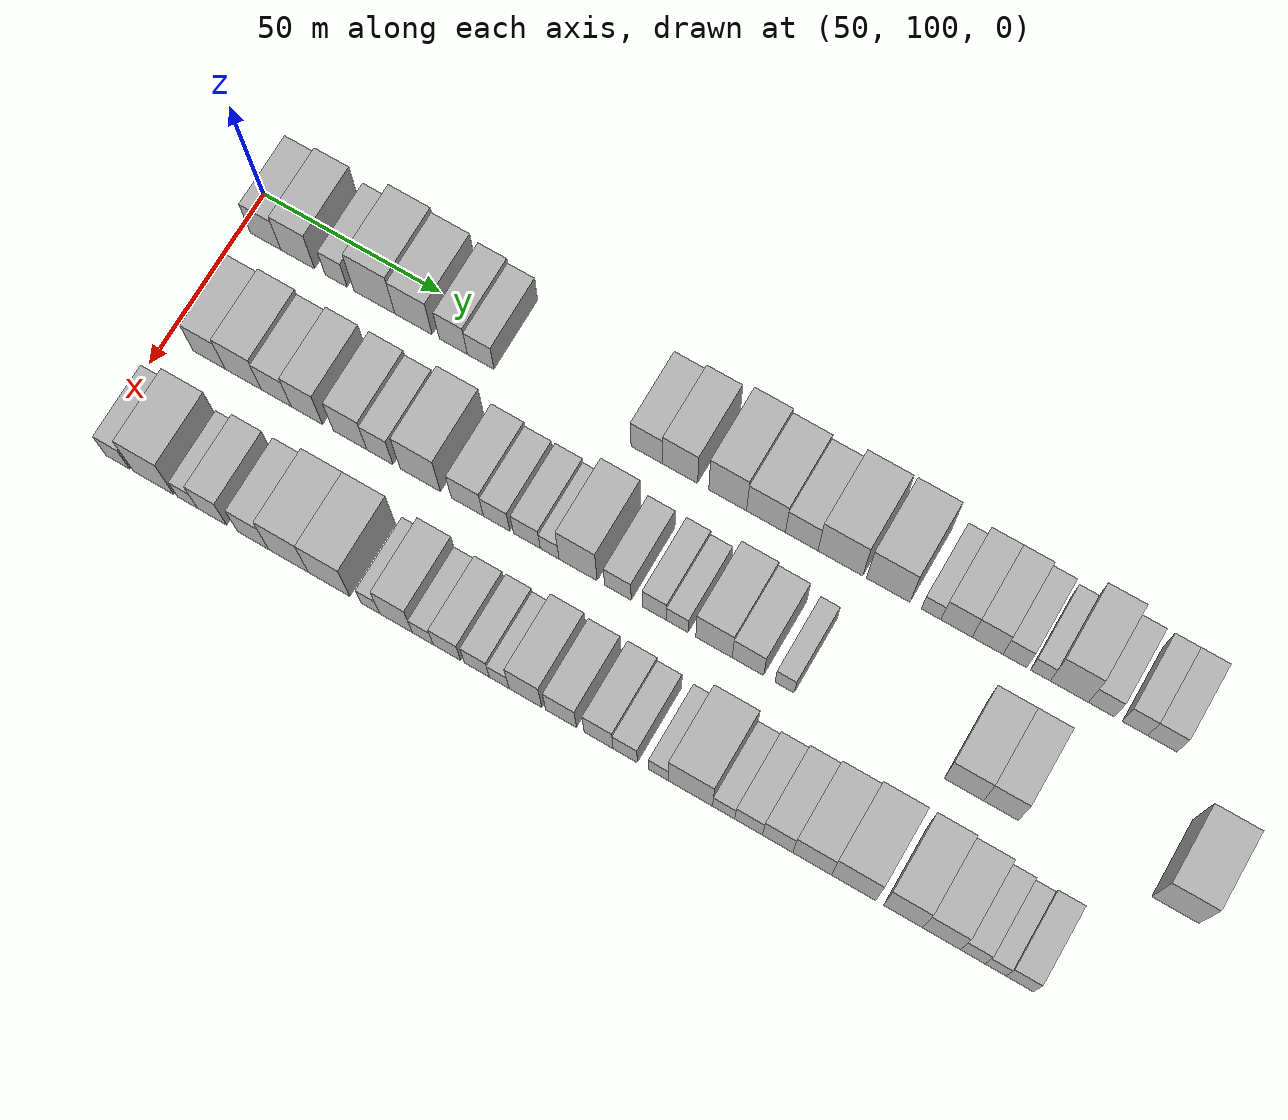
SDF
<sdf version="1.6">
 <world name="default">
  <model name="building_42">
   <static>1</static>
   <pose>50.0000 107.0255 0 0.000000 0.000000 0.000000</pose>
   <link name="link">
    <pose>0 0 9.00 0 0 0</pose>
    <collision name="collision"><geometry><box><size>20.0000 8.6352 18.0000</size></box></geometry></collision>
    <visual name="visual">
     <cast_shadows>0</cast_shadows>
     <geometry><box><size>20.0000 8.6352 18.0000</size></box></geometry>
     <material>
      <script>
       <uri>model://HANNAS_wall/materials/scripts</uri>
       <uri>model://HANNAS_wall/materials/textures</uri>
       <name>vrc/HANNAS_wall</name>
      </script>
     </material>
    </visual>
   </link>
  </model>
  <model name="building_43">
   <static>1</static>
   <pose>50.0000 116.1089 0 0.000000 0.000000 0.000000</pose>
   <link name="link">
    <pose>0 0 10.50 0 0 0</pose>
    <collision name="collision"><geometry><box><size>20.0000 9.5316 21.0000</size></box></geometry></collision>
    <visual name="visual">
     <cast_shadows>0</cast_shadows>
     <geometry><box><size>20.0000 9.5316 21.0000</size></box></geometry>
     <material>
      <script>
       <uri>model://HANNAS_wall/materials/scripts</uri>
       <uri>model://HANNAS_wall/materials/textures</uri>
       <name>vrc/HANNAS_wall</name>
      </script>
     </material>
    </visual>
   </link>
  </model>
  <model name="building_44">
   <static>1</static>
   <pose>50.0000 126.9574 0 0.000000 0.000000 0.000000</pose>
   <link name="link">
    <pose>0 0 7.50 0 0 0</pose>
    <collision name="collision"><geometry><box><size>20.0000 6.1653 15.0000</size></box></geometry></collision>
    <visual name="visual">
     <cast_shadows>0</cast_shadows>
     <geometry><box><size>20.0000 6.1653 15.0000</size></box></geometry>
     <material>
      <script>
       <uri>model://HANNAS_wall/materials/scripts</uri>
       <uri>model://HANNAS_wall/materials/textures</uri>
       <name>vrc/HANNAS_wall</name>
      </script>
     </material>
    </visual>
   </link>
  </model>
  <model name="building_45">
   <static>1</static>
   <pose>50.0000 137.7433 0 0.000000 0.000000 0.000000</pose>
   <link name="link">
    <pose>0 0 12.00 0 0 0</pose>
    <collision name="collision"><geometry><box><size>20.0000 11.4064 24.0000</size></box></geometry></collision>
    <visual name="visual">
     <cast_shadows>0</cast_shadows>
     <geometry><box><size>20.0000 11.4064 24.0000</size></box></geometry>
     <material>
      <script>
       <uri>model://HANNAS_wall/materials/scripts</uri>
       <uri>model://HANNAS_wall/materials/textures</uri>
       <name>vrc/HANNAS_wall</name>
      </script>
     </material>
    </visual>
   </link>
  </model>
  <model name="building_46">
   <static>1</static>
   <pose>50.0000 148.6436 0 0.000000 0.000000 0.000000</pose>
   <link name="link">
    <pose>0 0 10.50 0 0 0</pose>
    <collision name="collision"><geometry><box><size>20.0000 10.3942 21.0000</size></box></geometry></collision>
    <visual name="visual">
     <cast_shadows>0</cast_shadows>
     <geometry><box><size>20.0000 10.3942 21.0000</size></box></geometry>
     <material>
      <script>
       <uri>model://HANNAS_wall/materials/scripts</uri>
       <uri>model://HANNAS_wall/materials/textures</uri>
       <name>vrc/HANNAS_wall</name>
      </script>
     </material>
    </visual>
   </link>
  </model>
  <model name="building_47">
   <static>1</static>
   <pose>50.0000 159.7415 0 0.000000 0.000000 0.000000</pose>
   <link name="link">
    <pose>0 0 9.00 0 0 0</pose>
    <collision name="collision"><geometry><box><size>20.0000 7.8018 18.0000</size></box></geometry></collision>
    <visual name="visual">
     <cast_shadows>0</cast_shadows>
     <geometry><box><size>20.0000 7.8018 18.0000</size></box></geometry>
     <material>
      <script>
       <uri>model://HANNAS_wall/materials/scripts</uri>
       <uri>model://HANNAS_wall/materials/textures</uri>
       <name>vrc/HANNAS_wall</name>
      </script>
     </material>
    </visual>
   </link>
  </model>
  <model name="building_48">
   <static>1</static>
   <pose>50.0000 167.3226 0 0.000000 0.000000 0.000000</pose>
   <link name="link">
    <pose>0 0 7.50 0 0 0</pose>
    <collision name="collision"><geometry><box><size>20.0000 7.3603 15.0000</size></box></geometry></collision>
    <visual name="visual">
     <cast_shadows>0</cast_shadows>
     <geometry><box><size>20.0000 7.3603 15.0000</size></box></geometry>
     <material>
      <script>
       <uri>model://HANNAS_wall/materials/scripts</uri>
       <uri>model://HANNAS_wall/materials/textures</uri>
       <name>vrc/HANNAS_wall</name>
      </script>
     </material>
    </visual>
   </link>
  </model>
  <model name="building_49">
   <static>1</static>
   <pose>50.0000 212.8651 0 0.000000 0.000000 0.000000</pose>
   <link name="link">
    <pose>0 0 9.00 0 0 0</pose>
    <collision name="collision"><geometry><box><size>20.0000 8.5749 18.0000</size></box></geometry></collision>
    <visual name="visual">
     <cast_shadows>0</cast_shadows>
     <geometry><box><size>20.0000 8.5749 18.0000</size></box></geometry>
     <material>
      <script>
       <uri>model://HANNAS_wall/materials/scripts</uri>
       <uri>model://HANNAS_wall/materials/textures</uri>
       <name>vrc/HANNAS_wall</name>
      </script>
     </material>
    </visual>
   </link>
  </model>
  <model name="building_50">
   <static>1</static>
   <pose>50.0000 221.8781 0 0.000000 0.000000 0.000000</pose>
   <link name="link">
    <pose>0 0 10.50 0 0 0</pose>
    <collision name="collision"><geometry><box><size>20.0000 9.4511 21.0000</size></box></geometry></collision>
    <visual name="visual">
     <cast_shadows>0</cast_shadows>
     <geometry><box><size>20.0000 9.4511 21.0000</size></box></geometry>
     <material>
      <script>
       <uri>model://HANNAS_wall/materials/scripts</uri>
       <uri>model://HANNAS_wall/materials/textures</uri>
       <name>vrc/HANNAS_wall</name>
      </script>
     </material>
    </visual>
   </link>
  </model>
  <model name="building_51">
   <static>1</static>
   <pose>50.0000 234.6874 0 0.000000 0.000000 0.000000</pose>
   <link name="link">
    <pose>0 0 12.00 0 0 0</pose>
    <collision name="collision"><geometry><box><size>20.0000 10.1676 24.0000</size></box></geometry></collision>
    <visual name="visual">
     <cast_shadows>0</cast_shadows>
     <geometry><box><size>20.0000 10.1676 24.0000</size></box></geometry>
     <material>
      <script>
       <uri>model://HANNAS_wall/materials/scripts</uri>
       <uri>model://HANNAS_wall/materials/textures</uri>
       <name>vrc/HANNAS_wall</name>
      </script>
     </material>
    </visual>
   </link>
  </model>
  <model name="building_52">
   <static>1</static>
   <pose>50.0000 244.9730 0 0.000000 0.000000 0.000000</pose>
   <link name="link">
    <pose>0 0 10.50 0 0 0</pose>
    <collision name="collision"><geometry><box><size>20.0000 10.4035 21.0000</size></box></geometry></collision>
    <visual name="visual">
     <cast_shadows>0</cast_shadows>
     <geometry><box><size>20.0000 10.4035 21.0000</size></box></geometry>
     <material>
      <script>
       <uri>model://HANNAS_wall/materials/scripts</uri>
       <uri>model://HANNAS_wall/materials/textures</uri>
       <name>vrc/HANNAS_wall</name>
      </script>
     </material>
    </visual>
   </link>
  </model>
  <model name="building_53">
   <static>1</static>
   <pose>50.0000 254.5338 0 0.000000 0.000000 0.000000</pose>
   <link name="link">
    <pose>0 0 9.00 0 0 0</pose>
    <collision name="collision"><geometry><box><size>20.0000 8.7182 18.0000</size></box></geometry></collision>
    <visual name="visual">
     <cast_shadows>0</cast_shadows>
     <geometry><box><size>20.0000 8.7182 18.0000</size></box></geometry>
     <material>
      <script>
       <uri>model://HANNAS_wall/materials/scripts</uri>
       <uri>model://HANNAS_wall/materials/textures</uri>
       <name>vrc/HANNAS_wall</name>
      </script>
     </material>
    </visual>
   </link>
  </model>
  <model name="building_54">
   <static>1</static>
   <pose>50.0000 264.8373 0 0.000000 0.000000 0.000000</pose>
   <link name="link">
    <pose>0 0 12.00 0 0 0</pose>
    <collision name="collision"><geometry><box><size>20.0000 11.8889 24.0000</size></box></geometry></collision>
    <visual name="visual">
     <cast_shadows>0</cast_shadows>
     <geometry><box><size>20.0000 11.8889 24.0000</size></box></geometry>
     <material>
      <script>
       <uri>model://HANNAS_wall/materials/scripts</uri>
       <uri>model://HANNAS_wall/materials/textures</uri>
       <name>vrc/HANNAS_wall</name>
      </script>
     </material>
    </visual>
   </link>
  </model>
  <model name="building_55">
   <static>1</static>
   <pose>50.0000 277.5243 0 0.000000 0.000000 0.000000</pose>
   <link name="link">
    <pose>0 0 12.00 0 0 0</pose>
    <collision name="collision"><geometry><box><size>20.0000 11.4850 24.0000</size></box></geometry></collision>
    <visual name="visual">
     <cast_shadows>0</cast_shadows>
     <geometry><box><size>20.0000 11.4850 24.0000</size></box></geometry>
     <material>
      <script>
       <uri>model://HANNAS_wall/materials/scripts</uri>
       <uri>model://HANNAS_wall/materials/textures</uri>
       <name>vrc/HANNAS_wall</name>
      </script>
     </material>
    </visual>
   </link>
  </model>
  <model name="building_56">
   <static>1</static>
   <pose>50.0000 288.8443 0 0.000000 0.000000 0.000000</pose>
   <link name="link">
    <pose>0 0 6.00 0 0 0</pose>
    <collision name="collision"><geometry><box><size>20.0000 5.1550 12.0000</size></box></geometry></collision>
    <visual name="visual">
     <cast_shadows>0</cast_shadows>
     <geometry><box><size>20.0000 5.1550 12.0000</size></box></geometry>
     <material>
      <script>
       <uri>model://HANNAS_wall/materials/scripts</uri>
       <uri>model://HANNAS_wall/materials/textures</uri>
       <name>vrc/HANNAS_wall</name>
      </script>
     </material>
    </visual>
   </link>
  </model>
  <model name="building_57">
   <static>1</static>
   <pose>50.0000 295.5241 0 0.000000 0.000000 0.000000</pose>
   <link name="link">
    <pose>0 0 9.00 0 0 0</pose>
    <collision name="collision"><geometry><box><size>20.0000 8.2046 18.0000</size></box></geometry></collision>
    <visual name="visual">
     <cast_shadows>0</cast_shadows>
     <geometry><box><size>20.0000 8.2046 18.0000</size></box></geometry>
     <material>
      <script>
       <uri>model://HANNAS_wall/materials/scripts</uri>
       <uri>model://HANNAS_wall/materials/textures</uri>
       <name>vrc/HANNAS_wall</name>
      </script>
     </material>
    </visual>
   </link>
  </model>
  <model name="building_58">
   <static>1</static>
   <pose>50.0000 303.6294 0 0.000000 0.000000 0.000000</pose>
   <link name="link">
    <pose>0 0 9.00 0 0 0</pose>
    <collision name="collision"><geometry><box><size>20.0000 8.0060 18.0000</size></box></geometry></collision>
    <visual name="visual">
     <cast_shadows>0</cast_shadows>
     <geometry><box><size>20.0000 8.0060 18.0000</size></box></geometry>
     <material>
      <script>
       <uri>model://HANNAS_wall/materials/scripts</uri>
       <uri>model://HANNAS_wall/materials/textures</uri>
       <name>vrc/HANNAS_wall</name>
      </script>
     </material>
    </visual>
   </link>
  </model>
  <model name="building_59">
   <static>1</static>
   <pose>50.0000 310.7290 0 0.000000 0.000000 0.000000</pose>
   <link name="link">
    <pose>0 0 7.50 0 0 0</pose>
    <collision name="collision"><geometry><box><size>20.0000 6.1931 15.0000</size></box></geometry></collision>
    <visual name="visual">
     <cast_shadows>0</cast_shadows>
     <geometry><box><size>20.0000 6.1931 15.0000</size></box></geometry>
     <material>
      <script>
       <uri>model://HANNAS_wall/materials/scripts</uri>
       <uri>model://HANNAS_wall/materials/textures</uri>
       <name>vrc/HANNAS_wall</name>
      </script>
     </material>
    </visual>
   </link>
  </model>
  <model name="building_60">
   <static>1</static>
   <pose>50.0000 317.3762 0 0.000000 0.000000 0.000000</pose>
   <link name="link">
    <pose>0 0 6.00 0 0 0</pose>
    <collision name="collision"><geometry><box><size>20.0000 5.1014 12.0000</size></box></geometry></collision>
    <visual name="visual">
     <cast_shadows>0</cast_shadows>
     <geometry><box><size>20.0000 5.1014 12.0000</size></box></geometry>
     <material>
      <script>
       <uri>model://HANNAS_wall/materials/scripts</uri>
       <uri>model://HANNAS_wall/materials/textures</uri>
       <name>vrc/HANNAS_wall</name>
      </script>
     </material>
    </visual>
   </link>
  </model>
  <model name="building_61">
   <static>1</static>
   <pose>50.0000 324.8733 0 0.000000 0.000000 0.000000</pose>
   <link name="link">
    <pose>0 0 12.00 0 0 0</pose>
    <collision name="collision"><geometry><box><size>20.0000 9.8928 24.0000</size></box></geometry></collision>
    <visual name="visual">
     <cast_shadows>0</cast_shadows>
     <geometry><box><size>20.0000 9.8928 24.0000</size></box></geometry>
     <material>
      <script>
       <uri>model://HANNAS_wall/materials/scripts</uri>
       <uri>model://HANNAS_wall/materials/textures</uri>
       <name>vrc/HANNAS_wall</name>
      </script>
     </material>
    </visual>
   </link>
  </model>
  <model name="building_62">
   <static>1</static>
   <pose>50.0000 333.1877 0 0.000000 0.000000 0.000000</pose>
   <link name="link">
    <pose>0 0 7.50 0 0 0</pose>
    <collision name="collision"><geometry><box><size>20.0000 6.7360 15.0000</size></box></geometry></collision>
    <visual name="visual">
     <cast_shadows>0</cast_shadows>
     <geometry><box><size>20.0000 6.7360 15.0000</size></box></geometry>
     <material>
      <script>
       <uri>model://HANNAS_wall/materials/scripts</uri>
       <uri>model://HANNAS_wall/materials/textures</uri>
       <name>vrc/HANNAS_wall</name>
      </script>
     </material>
    </visual>
   </link>
  </model>
  <model name="building_63">
   <static>1</static>
   <pose>50.0000 341.8374 0 0.000000 0.000000 0.000000</pose>
   <link name="link">
    <pose>0 0 7.50 0 0 0</pose>
    <collision name="collision"><geometry><box><size>20.0000 6.5636 15.0000</size></box></geometry></collision>
    <visual name="visual">
     <cast_shadows>0</cast_shadows>
     <geometry><box><size>20.0000 6.5636 15.0000</size></box></geometry>
     <material>
      <script>
       <uri>model://HANNAS_wall/materials/scripts</uri>
       <uri>model://HANNAS_wall/materials/textures</uri>
       <name>vrc/HANNAS_wall</name>
      </script>
     </material>
    </visual>
   </link>
  </model>
  <model name="building_64">
   <static>1</static>
   <pose>50.0000 348.8670 0 0.000000 0.000000 0.000000</pose>
   <link name="link">
    <pose>0 0 7.50 0 0 0</pose>
    <collision name="collision"><geometry><box><size>20.0000 7.4956 15.0000</size></box></geometry></collision>
    <visual name="visual">
     <cast_shadows>0</cast_shadows>
     <geometry><box><size>20.0000 7.4956 15.0000</size></box></geometry>
     <material>
      <script>
       <uri>model://HANNAS_wall/materials/scripts</uri>
       <uri>model://HANNAS_wall/materials/textures</uri>
       <name>vrc/HANNAS_wall</name>
      </script>
     </material>
    </visual>
   </link>
  </model>
  <model name="building_118">
   <static>1</static>
   <pose>82.0000 111.6366 0 0.000000 0.000000 0.000000</pose>
   <link name="link">
    <pose>0 0 9.00 0 0 0</pose>
    <collision name="collision"><geometry><box><size>20.0000 8.9910 18.0000</size></box></geometry></collision>
    <visual name="visual">
     <cast_shadows>0</cast_shadows>
     <geometry><box><size>20.0000 8.9910 18.0000</size></box></geometry>
     <material>
      <script>
       <uri>model://HANNAS_wall/materials/scripts</uri>
       <uri>model://HANNAS_wall/materials/textures</uri>
       <name>vrc/HANNAS_wall</name>
      </script>
     </material>
    </visual>
   </link>
  </model>
  <model name="building_119">
   <static>1</static>
   <pose>82.0000 121.1888 0 0.000000 0.000000 0.000000</pose>
   <link name="link">
    <pose>0 0 10.50 0 0 0</pose>
    <collision name="collision"><geometry><box><size>20.0000 10.1135 21.0000</size></box></geometry></collision>
    <visual name="visual">
     <cast_shadows>0</cast_shadows>
     <geometry><box><size>20.0000 10.1135 21.0000</size></box></geometry>
     <material>
      <script>
       <uri>model://HANNAS_wall/materials/scripts</uri>
       <uri>model://HANNAS_wall/materials/textures</uri>
       <name>vrc/HANNAS_wall</name>
      </script>
     </material>
    </visual>
   </link>
  </model>
  <model name="building_120">
   <static>1</static>
   <pose>82.0000 130.4303 0 0.000000 0.000000 0.000000</pose>
   <link name="link">
    <pose>0 0 9.00 0 0 0</pose>
    <collision name="collision"><geometry><box><size>20.0000 8.3694 18.0000</size></box></geometry></collision>
    <visual name="visual">
     <cast_shadows>0</cast_shadows>
     <geometry><box><size>20.0000 8.3694 18.0000</size></box></geometry>
     <material>
      <script>
       <uri>model://HANNAS_wall/materials/scripts</uri>
       <uri>model://HANNAS_wall/materials/textures</uri>
       <name>vrc/HANNAS_wall</name>
      </script>
     </material>
    </visual>
   </link>
  </model>
  <model name="building_121">
   <static>1</static>
   <pose>82.0000 138.9737 0 0.000000 0.000000 0.000000</pose>
   <link name="link">
    <pose>0 0 10.50 0 0 0</pose>
    <collision name="collision"><geometry><box><size>20.0000 8.7174 21.0000</size></box></geometry></collision>
    <visual name="visual">
     <cast_shadows>0</cast_shadows>
     <geometry><box><size>20.0000 8.7174 21.0000</size></box></geometry>
     <material>
      <script>
       <uri>model://HANNAS_wall/materials/scripts</uri>
       <uri>model://HANNAS_wall/materials/textures</uri>
       <name>vrc/HANNAS_wall</name>
      </script>
     </material>
    </visual>
   </link>
  </model>
  <model name="building_122">
   <static>1</static>
   <pose>82.0000 150.9577 0 0.000000 0.000000 0.000000</pose>
   <link name="link">
    <pose>0 0 10.50 0 0 0</pose>
    <collision name="collision"><geometry><box><size>20.0000 9.2506 21.0000</size></box></geometry></collision>
    <visual name="visual">
     <cast_shadows>0</cast_shadows>
     <geometry><box><size>20.0000 9.2506 21.0000</size></box></geometry>
     <material>
      <script>
       <uri>model://HANNAS_wall/materials/scripts</uri>
       <uri>model://HANNAS_wall/materials/textures</uri>
       <name>vrc/HANNAS_wall</name>
      </script>
     </material>
    </visual>
   </link>
  </model>
  <model name="building_123">
   <static>1</static>
   <pose>82.0000 159.1846 0 0.000000 0.000000 0.000000</pose>
   <link name="link">
    <pose>0 0 9.00 0 0 0</pose>
    <collision name="collision"><geometry><box><size>20.0000 7.2032 18.0000</size></box></geometry></collision>
    <visual name="visual">
     <cast_shadows>0</cast_shadows>
     <geometry><box><size>20.0000 7.2032 18.0000</size></box></geometry>
     <material>
      <script>
       <uri>model://HANNAS_wall/materials/scripts</uri>
       <uri>model://HANNAS_wall/materials/textures</uri>
       <name>vrc/HANNAS_wall</name>
      </script>
     </material>
    </visual>
   </link>
  </model>
  <model name="building_124">
   <static>1</static>
   <pose>82.0000 170.3092 0 0.000000 0.000000 0.000000</pose>
   <link name="link">
    <pose>0 0 12.00 0 0 0</pose>
    <collision name="collision"><geometry><box><size>20.0000 11.0459 24.0000</size></box></geometry></collision>
    <visual name="visual">
     <cast_shadows>0</cast_shadows>
     <geometry><box><size>20.0000 11.0459 24.0000</size></box></geometry>
     <material>
      <script>
       <uri>model://HANNAS_wall/materials/scripts</uri>
       <uri>model://HANNAS_wall/materials/textures</uri>
       <name>vrc/HANNAS_wall</name>
      </script>
     </material>
    </visual>
   </link>
  </model>
  <model name="building_125">
   <static>1</static>
   <pose>82.0000 183.1890 0 0.000000 0.000000 0.000000</pose>
   <link name="link">
    <pose>0 0 9.00 0 0 0</pose>
    <collision name="collision"><geometry><box><size>20.0000 8.7137 18.0000</size></box></geometry></collision>
    <visual name="visual">
     <cast_shadows>0</cast_shadows>
     <geometry><box><size>20.0000 8.7137 18.0000</size></box></geometry>
     <material>
      <script>
       <uri>model://HANNAS_wall/materials/scripts</uri>
       <uri>model://HANNAS_wall/materials/textures</uri>
       <name>vrc/HANNAS_wall</name>
      </script>
     </material>
    </visual>
   </link>
  </model>
  <model name="building_126">
   <static>1</static>
   <pose>82.0000 191.1359 0 0.000000 0.000000 0.000000</pose>
   <link name="link">
    <pose>0 0 7.50 0 0 0</pose>
    <collision name="collision"><geometry><box><size>20.0000 7.1801 15.0000</size></box></geometry></collision>
    <visual name="visual">
     <cast_shadows>0</cast_shadows>
     <geometry><box><size>20.0000 7.1801 15.0000</size></box></geometry>
     <material>
      <script>
       <uri>model://HANNAS_wall/materials/scripts</uri>
       <uri>model://HANNAS_wall/materials/textures</uri>
       <name>vrc/HANNAS_wall</name>
      </script>
     </material>
    </visual>
   </link>
  </model>
  <model name="building_127">
   <static>1</static>
   <pose>82.0000 199.3512 0 0.000000 0.000000 0.000000</pose>
   <link name="link">
    <pose>0 0 7.50 0 0 0</pose>
    <collision name="collision"><geometry><box><size>20.0000 7.2505 15.0000</size></box></geometry></collision>
    <visual name="visual">
     <cast_shadows>0</cast_shadows>
     <geometry><box><size>20.0000 7.2505 15.0000</size></box></geometry>
     <material>
      <script>
       <uri>model://HANNAS_wall/materials/scripts</uri>
       <uri>model://HANNAS_wall/materials/textures</uri>
       <name>vrc/HANNAS_wall</name>
      </script>
     </material>
    </visual>
   </link>
  </model>
  <model name="building_128">
   <static>1</static>
   <pose>82.0000 205.5141 0 0.000000 0.000000 0.000000</pose>
   <link name="link">
    <pose>0 0 6.00 0 0 0</pose>
    <collision name="collision"><geometry><box><size>20.0000 5.0754 12.0000</size></box></geometry></collision>
    <visual name="visual">
     <cast_shadows>0</cast_shadows>
     <geometry><box><size>20.0000 5.0754 12.0000</size></box></geometry>
     <material>
      <script>
       <uri>model://HANNAS_wall/materials/scripts</uri>
       <uri>model://HANNAS_wall/materials/textures</uri>
       <name>vrc/HANNAS_wall</name>
      </script>
     </material>
    </visual>
   </link>
  </model>
  <model name="building_129">
   <static>1</static>
   <pose>82.0000 213.1860 0 0.000000 0.000000 0.000000</pose>
   <link name="link">
    <pose>0 0 12.00 0 0 0</pose>
    <collision name="collision"><geometry><box><size>20.0000 10.2684 24.0000</size></box></geometry></collision>
    <visual name="visual">
     <cast_shadows>0</cast_shadows>
     <geometry><box><size>20.0000 10.2684 24.0000</size></box></geometry>
     <material>
      <script>
       <uri>model://HANNAS_wall/materials/scripts</uri>
       <uri>model://HANNAS_wall/materials/textures</uri>
       <name>vrc/HANNAS_wall</name>
      </script>
     </material>
    </visual>
   </link>
  </model>
  <model name="building_130">
   <static>1</static>
   <pose>82.0000 223.8929 0 0.000000 0.000000 0.000000</pose>
   <link name="link">
    <pose>0 0 7.50 0 0 0</pose>
    <collision name="collision"><geometry><box><size>20.0000 7.1454 15.0000</size></box></geometry></collision>
    <visual name="visual">
     <cast_shadows>0</cast_shadows>
     <geometry><box><size>20.0000 7.1454 15.0000</size></box></geometry>
     <material>
      <script>
       <uri>model://HANNAS_wall/materials/scripts</uri>
       <uri>model://HANNAS_wall/materials/textures</uri>
       <name>vrc/HANNAS_wall</name>
      </script>
     </material>
    </visual>
   </link>
  </model>
  <model name="building_131">
   <static>1</static>
   <pose>82.0000 233.6661 0 0.000000 0.000000 0.000000</pose>
   <link name="link">
    <pose>0 0 7.50 0 0 0</pose>
    <collision name="collision"><geometry><box><size>20.0000 6.4011 15.0000</size></box></geometry></collision>
    <visual name="visual">
     <cast_shadows>0</cast_shadows>
     <geometry><box><size>20.0000 6.4011 15.0000</size></box></geometry>
     <material>
      <script>
       <uri>model://HANNAS_wall/materials/scripts</uri>
       <uri>model://HANNAS_wall/materials/textures</uri>
       <name>vrc/HANNAS_wall</name>
      </script>
     </material>
    </visual>
   </link>
  </model>
  <model name="building_132">
   <static>1</static>
   <pose>82.0000 239.7598 0 0.000000 0.000000 0.000000</pose>
   <link name="link">
    <pose>0 0 6.00 0 0 0</pose>
    <collision name="collision"><geometry><box><size>20.0000 5.7862 12.0000</size></box></geometry></collision>
    <visual name="visual">
     <cast_shadows>0</cast_shadows>
     <geometry><box><size>20.0000 5.7862 12.0000</size></box></geometry>
     <material>
      <script>
       <uri>model://HANNAS_wall/materials/scripts</uri>
       <uri>model://HANNAS_wall/materials/textures</uri>
       <name>vrc/HANNAS_wall</name>
      </script>
     </material>
    </visual>
   </link>
  </model>
  <model name="building_133">
   <static>1</static>
   <pose>82.0000 249.4871 0 0.000000 0.000000 0.000000</pose>
   <link name="link">
    <pose>0 0 10.50 0 0 0</pose>
    <collision name="collision"><geometry><box><size>20.0000 9.6686 21.0000</size></box></geometry></collision>
    <visual name="visual">
     <cast_shadows>0</cast_shadows>
     <geometry><box><size>20.0000 9.6686 21.0000</size></box></geometry>
     <material>
      <script>
       <uri>model://HANNAS_wall/materials/scripts</uri>
       <uri>model://HANNAS_wall/materials/textures</uri>
       <name>vrc/HANNAS_wall</name>
      </script>
     </material>
    </visual>
   </link>
  </model>
  <model name="building_134">
   <static>1</static>
   <pose>82.0000 258.4680 0 0.000000 0.000000 0.000000</pose>
   <link name="link">
    <pose>0 0 9.00 0 0 0</pose>
    <collision name="collision"><geometry><box><size>20.0000 8.2932 18.0000</size></box></geometry></collision>
    <visual name="visual">
     <cast_shadows>0</cast_shadows>
     <geometry><box><size>20.0000 8.2932 18.0000</size></box></geometry>
     <material>
      <script>
       <uri>model://HANNAS_wall/materials/scripts</uri>
       <uri>model://HANNAS_wall/materials/textures</uri>
       <name>vrc/HANNAS_wall</name>
      </script>
     </material>
    </visual>
   </link>
  </model>
  <model name="building_135">
   <static>1</static>
   <pose>82.0000 268.1443 0 0.000000 0.000000 0.000000</pose>
   <link name="link">
    <pose>0 0 6.00 0 0 0</pose>
    <collision name="collision"><geometry><box><size>20.0000 5.0595 12.0000</size></box></geometry></collision>
    <visual name="visual">
     <cast_shadows>0</cast_shadows>
     <geometry><box><size>20.0000 5.0595 12.0000</size></box></geometry>
     <material>
      <script>
       <uri>model://HANNAS_wall/materials/scripts</uri>
       <uri>model://HANNAS_wall/materials/textures</uri>
       <name>vrc/HANNAS_wall</name>
      </script>
     </material>
    </visual>
   </link>
  </model>
  <model name="building_136">
   <static>1</static>
   <pose>82.0000 314.8760 0 0.000000 0.000000 0.000000</pose>
   <link name="link">
    <pose>0 0 10.50 0 0 0</pose>
    <collision name="collision"><geometry><box><size>20.0000 10.1346 21.0000</size></box></geometry></collision>
    <visual name="visual">
     <cast_shadows>0</cast_shadows>
     <geometry><box><size>20.0000 10.1346 21.0000</size></box></geometry>
     <material>
      <script>
       <uri>model://HANNAS_wall/materials/scripts</uri>
       <uri>model://HANNAS_wall/materials/textures</uri>
       <name>vrc/HANNAS_wall</name>
      </script>
     </material>
    </visual>
   </link>
  </model>
  <model name="building_137">
   <static>1</static>
   <pose>82.0000 324.4108 0 0.000000 0.000000 0.000000</pose>
   <link name="link">
    <pose>0 0 10.50 0 0 0</pose>
    <collision name="collision"><geometry><box><size>20.0000 8.9350 21.0000</size></box></geometry></collision>
    <visual name="visual">
     <cast_shadows>0</cast_shadows>
     <geometry><box><size>20.0000 8.9350 21.0000</size></box></geometry>
     <material>
      <script>
       <uri>model://HANNAS_wall/materials/scripts</uri>
       <uri>model://HANNAS_wall/materials/textures</uri>
       <name>vrc/HANNAS_wall</name>
      </script>
     </material>
    </visual>
   </link>
  </model>
  <model name="building_138">
   <static>1</static>
   <pose>82.0000 368.7011 0 0.000000 0.000000 0.000000</pose>
   <link name="link">
    <pose>0 0 12.00 0 0 0</pose>
    <collision name="collision"><geometry><box><size>20.0000 11.8819 24.0000</size></box></geometry></collision>
    <visual name="visual">
     <cast_shadows>0</cast_shadows>
     <geometry><box><size>20.0000 11.8819 24.0000</size></box></geometry>
     <material>
      <script>
       <uri>model://HANNAS_wall/materials/scripts</uri>
       <uri>model://HANNAS_wall/materials/textures</uri>
       <name>vrc/HANNAS_wall</name>
      </script>
     </material>
    </visual>
   </link>
  </model>
  <model name="building_189">
   <static>1</static>
   <pose>114.0000 106.9181 0 0.000000 0.000000 0.000000</pose>
   <link name="link">
    <pose>0 0 7.50 0 0 0</pose>
    <collision name="collision"><geometry><box><size>20.0000 6.6703 15.0000</size></box></geometry></collision>
    <visual name="visual">
     <cast_shadows>0</cast_shadows>
     <geometry><box><size>20.0000 6.6703 15.0000</size></box></geometry>
     <material>
      <script>
       <uri>model://HANNAS_wall/materials/scripts</uri>
       <uri>model://HANNAS_wall/materials/textures</uri>
       <name>vrc/HANNAS_wall</name>
      </script>
     </material>
    </visual>
   </link>
  </model>
  <model name="building_190">
   <static>1</static>
   <pose>114.0000 116.8939 0 0.000000 0.000000 0.000000</pose>
   <link name="link">
    <pose>0 0 12.00 0 0 0</pose>
    <collision name="collision"><geometry><box><size>20.0000 11.2812 24.0000</size></box></geometry></collision>
    <visual name="visual">
     <cast_shadows>0</cast_shadows>
     <geometry><box><size>20.0000 11.2812 24.0000</size></box></geometry>
     <material>
      <script>
       <uri>model://HANNAS_wall/materials/scripts</uri>
       <uri>model://HANNAS_wall/materials/textures</uri>
       <name>vrc/HANNAS_wall</name>
      </script>
     </material>
    </visual>
   </link>
  </model>
  <model name="building_191">
   <static>1</static>
   <pose>114.0000 126.2942 0 0.000000 0.000000 0.000000</pose>
   <link name="link">
    <pose>0 0 6.00 0 0 0</pose>
    <collision name="collision"><geometry><box><size>20.0000 5.5194 12.0000</size></box></geometry></collision>
    <visual name="visual">
     <cast_shadows>0</cast_shadows>
     <geometry><box><size>20.0000 5.5194 12.0000</size></box></geometry>
     <material>
      <script>
       <uri>model://HANNAS_wall/materials/scripts</uri>
       <uri>model://HANNAS_wall/materials/textures</uri>
       <name>vrc/HANNAS_wall</name>
      </script>
     </material>
    </visual>
   </link>
  </model>
  <model name="building_192">
   <static>1</static>
   <pose>114.0000 133.1013 0 0.000000 0.000000 0.000000</pose>
   <link name="link">
    <pose>0 0 9.00 0 0 0</pose>
    <collision name="collision"><geometry><box><size>20.0000 8.0949 18.0000</size></box></geometry></collision>
    <visual name="visual">
     <cast_shadows>0</cast_shadows>
     <geometry><box><size>20.0000 8.0949 18.0000</size></box></geometry>
     <material>
      <script>
       <uri>model://HANNAS_wall/materials/scripts</uri>
       <uri>model://HANNAS_wall/materials/textures</uri>
       <name>vrc/HANNAS_wall</name>
      </script>
     </material>
    </visual>
   </link>
  </model>
  <model name="building_193">
   <static>1</static>
   <pose>114.0000 144.4343 0 0.000000 0.000000 0.000000</pose>
   <link name="link">
    <pose>0 0 9.00 0 0 0</pose>
    <collision name="collision"><geometry><box><size>20.0000 8.5712 18.0000</size></box></geometry></collision>
    <visual name="visual">
     <cast_shadows>0</cast_shadows>
     <geometry><box><size>20.0000 8.5712 18.0000</size></box></geometry>
     <material>
      <script>
       <uri>model://HANNAS_wall/materials/scripts</uri>
       <uri>model://HANNAS_wall/materials/textures</uri>
       <name>vrc/HANNAS_wall</name>
      </script>
     </material>
    </visual>
   </link>
  </model>
  <model name="building_194">
   <static>1</static>
   <pose>114.0000 154.1897 0 0.000000 0.000000 0.000000</pose>
   <link name="link">
    <pose>0 0 12.00 0 0 0</pose>
    <collision name="collision"><geometry><box><size>20.0000 10.9397 24.0000</size></box></geometry></collision>
    <visual name="visual">
     <cast_shadows>0</cast_shadows>
     <geometry><box><size>20.0000 10.9397 24.0000</size></box></geometry>
     <material>
      <script>
       <uri>model://HANNAS_wall/materials/scripts</uri>
       <uri>model://HANNAS_wall/materials/textures</uri>
       <name>vrc/HANNAS_wall</name>
      </script>
     </material>
    </visual>
   </link>
  </model>
  <model name="building_195">
   <static>1</static>
   <pose>114.0000 165.3169 0 0.000000 0.000000 0.000000</pose>
   <link name="link">
    <pose>0 0 12.00 0 0 0</pose>
    <collision name="collision"><geometry><box><size>20.0000 11.3146 24.0000</size></box></geometry></collision>
    <visual name="visual">
     <cast_shadows>0</cast_shadows>
     <geometry><box><size>20.0000 11.3146 24.0000</size></box></geometry>
     <material>
      <script>
       <uri>model://HANNAS_wall/materials/scripts</uri>
       <uri>model://HANNAS_wall/materials/textures</uri>
       <name>vrc/HANNAS_wall</name>
      </script>
     </material>
    </visual>
   </link>
  </model>
  <model name="building_196">
   <static>1</static>
   <pose>114.0000 176.5222 0 0.000000 0.000000 0.000000</pose>
   <link name="link">
    <pose>0 0 6.00 0 0 0</pose>
    <collision name="collision"><geometry><box><size>20.0000 5.0961 12.0000</size></box></geometry></collision>
    <visual name="visual">
     <cast_shadows>0</cast_shadows>
     <geometry><box><size>20.0000 5.0961 12.0000</size></box></geometry>
     <material>
      <script>
       <uri>model://HANNAS_wall/materials/scripts</uri>
       <uri>model://HANNAS_wall/materials/textures</uri>
       <name>vrc/HANNAS_wall</name>
      </script>
     </material>
    </visual>
   </link>
  </model>
  <model name="building_197">
   <static>1</static>
   <pose>114.0000 183.4886 0 0.000000 0.000000 0.000000</pose>
   <link name="link">
    <pose>0 0 10.50 0 0 0</pose>
    <collision name="collision"><geometry><box><size>20.0000 8.8366 21.0000</size></box></geometry></collision>
    <visual name="visual">
     <cast_shadows>0</cast_shadows>
     <geometry><box><size>20.0000 8.8366 21.0000</size></box></geometry>
     <material>
      <script>
       <uri>model://HANNAS_wall/materials/scripts</uri>
       <uri>model://HANNAS_wall/materials/textures</uri>
       <name>vrc/HANNAS_wall</name>
      </script>
     </material>
    </visual>
   </link>
  </model>
  <model name="building_198">
   <static>1</static>
   <pose>114.0000 190.7337 0 0.000000 0.000000 0.000000</pose>
   <link name="link">
    <pose>0 0 6.00 0 0 0</pose>
    <collision name="collision"><geometry><box><size>20.0000 5.6537 12.0000</size></box></geometry></collision>
    <visual name="visual">
     <cast_shadows>0</cast_shadows>
     <geometry><box><size>20.0000 5.6537 12.0000</size></box></geometry>
     <material>
      <script>
       <uri>model://HANNAS_wall/materials/scripts</uri>
       <uri>model://HANNAS_wall/materials/textures</uri>
       <name>vrc/HANNAS_wall</name>
      </script>
     </material>
    </visual>
   </link>
  </model>
  <model name="building_199">
   <static>1</static>
   <pose>114.0000 197.2482 0 0.000000 0.000000 0.000000</pose>
   <link name="link">
    <pose>0 0 7.50 0 0 0</pose>
    <collision name="collision"><geometry><box><size>20.0000 7.3753 15.0000</size></box></geometry></collision>
    <visual name="visual">
     <cast_shadows>0</cast_shadows>
     <geometry><box><size>20.0000 7.3753 15.0000</size></box></geometry>
     <material>
      <script>
       <uri>model://HANNAS_wall/materials/scripts</uri>
       <uri>model://HANNAS_wall/materials/textures</uri>
       <name>vrc/HANNAS_wall</name>
      </script>
     </material>
    </visual>
   </link>
  </model>
  <model name="building_200">
   <static>1</static>
   <pose>114.0000 205.2920 0 0.000000 0.000000 0.000000</pose>
   <link name="link">
    <pose>0 0 7.50 0 0 0</pose>
    <collision name="collision"><geometry><box><size>20.0000 6.7123 15.0000</size></box></geometry></collision>
    <visual name="visual">
     <cast_shadows>0</cast_shadows>
     <geometry><box><size>20.0000 6.7123 15.0000</size></box></geometry>
     <material>
      <script>
       <uri>model://HANNAS_wall/materials/scripts</uri>
       <uri>model://HANNAS_wall/materials/textures</uri>
       <name>vrc/HANNAS_wall</name>
      </script>
     </material>
    </visual>
   </link>
  </model>
  <model name="building_201">
   <static>1</static>
   <pose>114.0000 211.2805 0 0.000000 0.000000 0.000000</pose>
   <link name="link">
    <pose>0 0 6.00 0 0 0</pose>
    <collision name="collision"><geometry><box><size>20.0000 5.2647 12.0000</size></box></geometry></collision>
    <visual name="visual">
     <cast_shadows>0</cast_shadows>
     <geometry><box><size>20.0000 5.2647 12.0000</size></box></geometry>
     <material>
      <script>
       <uri>model://HANNAS_wall/materials/scripts</uri>
       <uri>model://HANNAS_wall/materials/textures</uri>
       <name>vrc/HANNAS_wall</name>
      </script>
     </material>
    </visual>
   </link>
  </model>
  <model name="building_202">
   <static>1</static>
   <pose>114.0000 218.2792 0 0.000000 0.000000 0.000000</pose>
   <link name="link">
    <pose>0 0 10.50 0 0 0</pose>
    <collision name="collision"><geometry><box><size>20.0000 8.7326 21.0000</size></box></geometry></collision>
    <visual name="visual">
     <cast_shadows>0</cast_shadows>
     <geometry><box><size>20.0000 8.7326 21.0000</size></box></geometry>
     <material>
      <script>
       <uri>model://HANNAS_wall/materials/scripts</uri>
       <uri>model://HANNAS_wall/materials/textures</uri>
       <name>vrc/HANNAS_wall</name>
      </script>
     </material>
    </visual>
   </link>
  </model>
  <model name="building_203">
   <static>1</static>
   <pose>114.0000 227.7423 0 0.000000 0.000000 0.000000</pose>
   <link name="link">
    <pose>0 0 9.00 0 0 0</pose>
    <collision name="collision"><geometry><box><size>20.0000 8.1936 18.0000</size></box></geometry></collision>
    <visual name="visual">
     <cast_shadows>0</cast_shadows>
     <geometry><box><size>20.0000 8.1936 18.0000</size></box></geometry>
     <material>
      <script>
       <uri>model://HANNAS_wall/materials/scripts</uri>
       <uri>model://HANNAS_wall/materials/textures</uri>
       <name>vrc/HANNAS_wall</name>
      </script>
     </material>
    </visual>
   </link>
  </model>
  <model name="building_204">
   <static>1</static>
   <pose>114.0000 237.6676 0 0.000000 0.000000 0.000000</pose>
   <link name="link">
    <pose>0 0 9.00 0 0 0</pose>
    <collision name="collision"><geometry><box><size>20.0000 7.6572 18.0000</size></box></geometry></collision>
    <visual name="visual">
     <cast_shadows>0</cast_shadows>
     <geometry><box><size>20.0000 7.6572 18.0000</size></box></geometry>
     <material>
      <script>
       <uri>model://HANNAS_wall/materials/scripts</uri>
       <uri>model://HANNAS_wall/materials/textures</uri>
       <name>vrc/HANNAS_wall</name>
      </script>
     </material>
    </visual>
   </link>
  </model>
  <model name="building_205">
   <static>1</static>
   <pose>114.0000 244.6917 0 0.000000 0.000000 0.000000</pose>
   <link name="link">
    <pose>0 0 7.50 0 0 0</pose>
    <collision name="collision"><geometry><box><size>20.0000 6.3910 15.0000</size></box></geometry></collision>
    <visual name="visual">
     <cast_shadows>0</cast_shadows>
     <geometry><box><size>20.0000 6.3910 15.0000</size></box></geometry>
     <material>
      <script>
       <uri>model://HANNAS_wall/materials/scripts</uri>
       <uri>model://HANNAS_wall/materials/textures</uri>
       <name>vrc/HANNAS_wall</name>
      </script>
     </material>
    </visual>
   </link>
  </model>
  <model name="building_206">
   <static>1</static>
   <pose>114.0000 253.4335 0 0.000000 0.000000 0.000000</pose>
   <link name="link">
    <pose>0 0 6.00 0 0 0</pose>
    <collision name="collision"><geometry><box><size>20.0000 5.0924 12.0000</size></box></geometry></collision>
    <visual name="visual">
     <cast_shadows>0</cast_shadows>
     <geometry><box><size>20.0000 5.0924 12.0000</size></box></geometry>
     <material>
      <script>
       <uri>model://HANNAS_wall/materials/scripts</uri>
       <uri>model://HANNAS_wall/materials/textures</uri>
       <name>vrc/HANNAS_wall</name>
      </script>
     </material>
    </visual>
   </link>
  </model>
  <model name="building_207">
   <static>1</static>
   <pose>114.0000 261.7825 0 0.000000 0.000000 0.000000</pose>
   <link name="link">
    <pose>0 0 12.00 0 0 0</pose>
    <collision name="collision"><geometry><box><size>20.0000 11.6058 24.0000</size></box></geometry></collision>
    <visual name="visual">
     <cast_shadows>0</cast_shadows>
     <geometry><box><size>20.0000 11.6058 24.0000</size></box></geometry>
     <material>
      <script>
       <uri>model://HANNAS_wall/materials/scripts</uri>
       <uri>model://HANNAS_wall/materials/textures</uri>
       <name>vrc/HANNAS_wall</name>
      </script>
     </material>
    </visual>
   </link>
  </model>
  <model name="building_208">
   <static>1</static>
   <pose>114.0000 270.4783 0 0.000000 0.000000 0.000000</pose>
   <link name="link">
    <pose>0 0 6.00 0 0 0</pose>
    <collision name="collision"><geometry><box><size>20.0000 5.7858 12.0000</size></box></geometry></collision>
    <visual name="visual">
     <cast_shadows>0</cast_shadows>
     <geometry><box><size>20.0000 5.7858 12.0000</size></box></geometry>
     <material>
      <script>
       <uri>model://HANNAS_wall/materials/scripts</uri>
       <uri>model://HANNAS_wall/materials/textures</uri>
       <name>vrc/HANNAS_wall</name>
      </script>
     </material>
    </visual>
   </link>
  </model>
  <model name="building_209">
   <static>1</static>
   <pose>114.0000 276.9677 0 0.000000 0.000000 0.000000</pose>
   <link name="link">
    <pose>0 0 7.50 0 0 0</pose>
    <collision name="collision"><geometry><box><size>20.0000 7.1930 15.0000</size></box></geometry></collision>
    <visual name="visual">
     <cast_shadows>0</cast_shadows>
     <geometry><box><size>20.0000 7.1930 15.0000</size></box></geometry>
     <material>
      <script>
       <uri>model://HANNAS_wall/materials/scripts</uri>
       <uri>model://HANNAS_wall/materials/textures</uri>
       <name>vrc/HANNAS_wall</name>
      </script>
     </material>
    </visual>
   </link>
  </model>
  <model name="building_210">
   <static>1</static>
   <pose>114.0000 284.5030 0 0.000000 0.000000 0.000000</pose>
   <link name="link">
    <pose>0 0 9.00 0 0 0</pose>
    <collision name="collision"><geometry><box><size>20.0000 7.8775 18.0000</size></box></geometry></collision>
    <visual name="visual">
     <cast_shadows>0</cast_shadows>
     <geometry><box><size>20.0000 7.8775 18.0000</size></box></geometry>
     <material>
      <script>
       <uri>model://HANNAS_wall/materials/scripts</uri>
       <uri>model://HANNAS_wall/materials/textures</uri>
       <name>vrc/HANNAS_wall</name>
      </script>
     </material>
    </visual>
   </link>
  </model>
  <model name="building_211">
   <static>1</static>
   <pose>114.0000 293.4436 0 0.000000 0.000000 0.000000</pose>
   <link name="link">
    <pose>0 0 10.50 0 0 0</pose>
    <collision name="collision"><geometry><box><size>20.0000 10.0038 21.0000</size></box></geometry></collision>
    <visual name="visual">
     <cast_shadows>0</cast_shadows>
     <geometry><box><size>20.0000 10.0038 21.0000</size></box></geometry>
     <material>
      <script>
       <uri>model://HANNAS_wall/materials/scripts</uri>
       <uri>model://HANNAS_wall/materials/textures</uri>
       <name>vrc/HANNAS_wall</name>
      </script>
     </material>
    </visual>
   </link>
  </model>
  <model name="building_212">
   <static>1</static>
   <pose>114.0000 304.1387 0 0.000000 0.000000 0.000000</pose>
   <link name="link">
    <pose>0 0 12.00 0 0 0</pose>
    <collision name="collision"><geometry><box><size>20.0000 11.3863 24.0000</size></box></geometry></collision>
    <visual name="visual">
     <cast_shadows>0</cast_shadows>
     <geometry><box><size>20.0000 11.3863 24.0000</size></box></geometry>
     <material>
      <script>
       <uri>model://HANNAS_wall/materials/scripts</uri>
       <uri>model://HANNAS_wall/materials/textures</uri>
       <name>vrc/HANNAS_wall</name>
      </script>
     </material>
    </visual>
   </link>
  </model>
  <model name="building_213">
   <static>1</static>
   <pose>114.0000 316.8301 0 0.000000 0.000000 0.000000</pose>
   <link name="link">
    <pose>0 0 12.00 0 0 0</pose>
    <collision name="collision"><geometry><box><size>20.0000 9.9966 24.0000</size></box></geometry></collision>
    <visual name="visual">
     <cast_shadows>0</cast_shadows>
     <geometry><box><size>20.0000 9.9966 24.0000</size></box></geometry>
     <material>
      <script>
       <uri>model://HANNAS_wall/materials/scripts</uri>
       <uri>model://HANNAS_wall/materials/textures</uri>
       <name>vrc/HANNAS_wall</name>
      </script>
     </material>
    </visual>
   </link>
  </model>
  <model name="building_214">
   <static>1</static>
   <pose>114.0000 326.6453 0 0.000000 0.000000 0.000000</pose>
   <link name="link">
    <pose>0 0 10.50 0 0 0</pose>
    <collision name="collision"><geometry><box><size>20.0000 9.6338 21.0000</size></box></geometry></collision>
    <visual name="visual">
     <cast_shadows>0</cast_shadows>
     <geometry><box><size>20.0000 9.6338 21.0000</size></box></geometry>
     <material>
      <script>
       <uri>model://HANNAS_wall/materials/scripts</uri>
       <uri>model://HANNAS_wall/materials/textures</uri>
       <name>vrc/HANNAS_wall</name>
      </script>
     </material>
    </visual>
   </link>
  </model>
  <model name="building_215">
   <static>1</static>
   <pose>114.0000 334.5714 0 0.000000 0.000000 0.000000</pose>
   <link name="link">
    <pose>0 0 7.50 0 0 0</pose>
    <collision name="collision"><geometry><box><size>20.0000 6.2183 15.0000</size></box></geometry></collision>
    <visual name="visual">
     <cast_shadows>0</cast_shadows>
     <geometry><box><size>20.0000 6.2183 15.0000</size></box></geometry>
     <material>
      <script>
       <uri>model://HANNAS_wall/materials/scripts</uri>
       <uri>model://HANNAS_wall/materials/textures</uri>
       <name>vrc/HANNAS_wall</name>
      </script>
     </material>
    </visual>
   </link>
  </model>
  <model name="building_216">
   <static>1</static>
   <pose>114.0000 340.3169 0 0.000000 0.000000 0.000000</pose>
   <link name="link">
    <pose>0 0 6.00 0 0 0</pose>
    <collision name="collision"><geometry><box><size>20.0000 5.2726 12.0000</size></box></geometry></collision>
    <visual name="visual">
     <cast_shadows>0</cast_shadows>
     <geometry><box><size>20.0000 5.2726 12.0000</size></box></geometry>
     <material>
      <script>
       <uri>model://HANNAS_wall/materials/scripts</uri>
       <uri>model://HANNAS_wall/materials/textures</uri>
       <name>vrc/HANNAS_wall</name>
      </script>
     </material>
    </visual>
   </link>
  </model>
  <model name="building_217">
   <static>1</static>
   <pose>114.0000 346.3981 0 0.000000 0.000000 0.000000</pose>
   <link name="link">
    <pose>0 0 7.50 0 0 0</pose>
    <collision name="collision"><geometry><box><size>20.0000 6.8899 15.0000</size></box></geometry></collision>
    <visual name="visual">
     <cast_shadows>0</cast_shadows>
     <geometry><box><size>20.0000 6.8899 15.0000</size></box></geometry>
     <material>
      <script>
       <uri>model://HANNAS_wall/materials/scripts</uri>
       <uri>model://HANNAS_wall/materials/textures</uri>
       <name>vrc/HANNAS_wall</name>
      </script>
     </material>
    </visual>
   </link>
  </model>
 </world>
</sdf>
